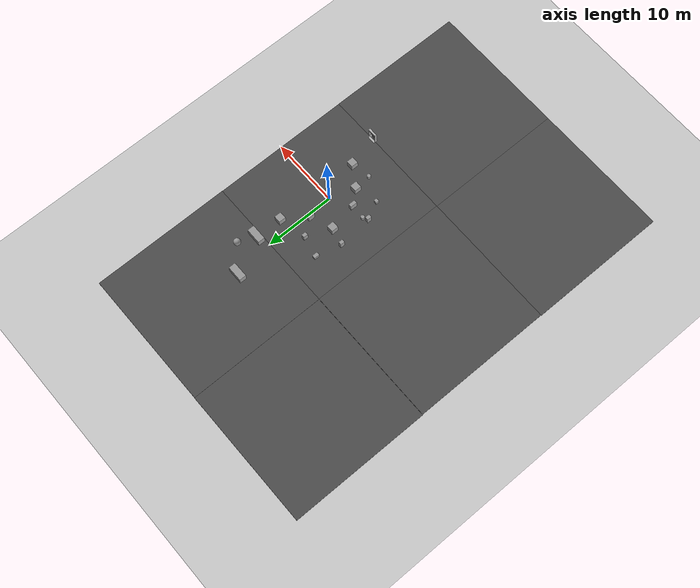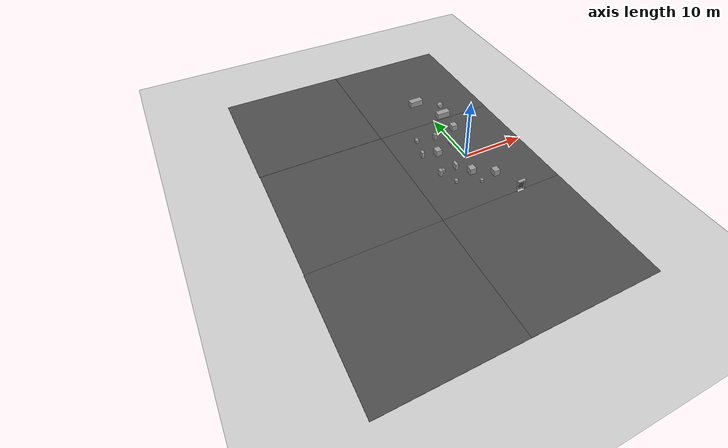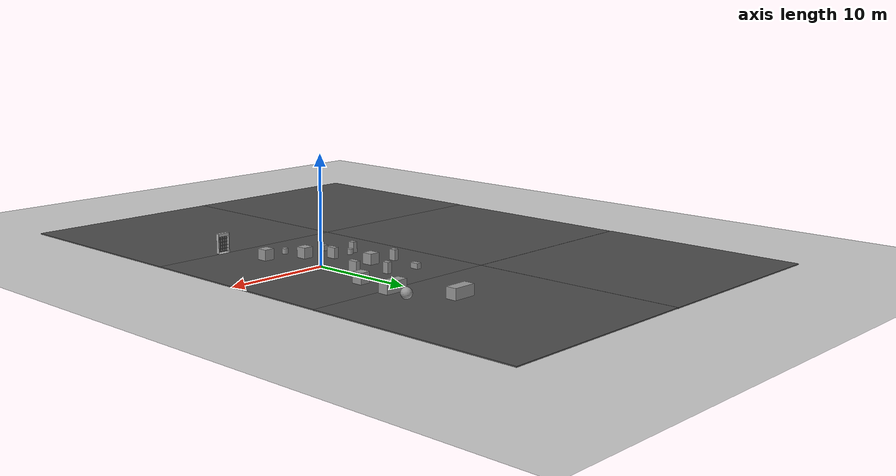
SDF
<sdf version="1.7">
 <world name="default">
  <model name="ground_plane">
   <static>1</static>
   <link name="link">
    <collision name="collision">
     <geometry><plane><normal>0 0 1</normal><size>100 100</size></plane></geometry>
     <surface>
      <contact><collide_bitmask>65535</collide_bitmask></contact>
      <friction><ode><mu>100</mu><mu2>50</mu2></ode></friction>
     </surface>
    </collision>
    <visual name="visual">
     <cast_shadows>0</cast_shadows>
     <geometry><plane><normal>0 0 1</normal><size>100 100</size></plane></geometry>
     <material>
      <script><uri>file://media/materials/scripts/gazebo.material</uri><name>Gazebo/Grey</name></script>
     </material>
    </visual>
   </link>
  </model>
  <model name="asphalt_plane">
   <static>1</static>
   <link name="link">
    <collision name="collision"><geometry><box><size>20 20 0.1</size></box></geometry></collision>
    <visual name="visual">
     <cast_shadows>0</cast_shadows>
     <geometry><box><size>20 20 0.1</size></box></geometry>
     <material>
      <script>
       <uri>model://asphalt_plane/materials/scripts</uri>
       <uri>model://asphalt_plane/materials/textures</uri>
       <name>vrc/asphalt</name>
      </script>
     </material>
    </visual>
   </link>
   <pose>-0.014859 -0.026662 0 0 -0 0</pose>
  </model>
  <model name="asphalt_plane_clone_1">
   <static>1</static>
   <link name="link">
    <collision name="collision"><geometry><box><size>20 20 0.1</size></box></geometry></collision>
    <visual name="visual">
     <cast_shadows>0</cast_shadows>
     <geometry><box><size>20 20 0.1</size></box></geometry>
     <material>
      <script>
       <uri>model://asphalt_plane/materials/scripts</uri>
       <uri>model://asphalt_plane/materials/textures</uri>
       <name>vrc/asphalt</name>
      </script>
     </material>
    </visual>
   </link>
   <pose>0 -20 0 0 -0 0</pose>
  </model>
  <model name="asphalt_plane_clone_2">
   <static>1</static>
   <link name="link">
    <collision name="collision"><geometry><box><size>20 20 0.1</size></box></geometry></collision>
    <visual name="visual">
     <cast_shadows>0</cast_shadows>
     <geometry><box><size>20 20 0.1</size></box></geometry>
     <material>
      <script>
       <uri>model://asphalt_plane/materials/scripts</uri>
       <uri>model://asphalt_plane/materials/textures</uri>
       <name>vrc/asphalt</name>
      </script>
     </material>
    </visual>
   </link>
   <pose>-20 -20 0 0 -0 0</pose>
  </model>
  <model name="asphalt_plane_clone_3">
   <static>1</static>
   <link name="link">
    <collision name="collision"><geometry><box><size>20 20 0.1</size></box></geometry></collision>
    <visual name="visual">
     <cast_shadows>0</cast_shadows>
     <geometry><box><size>20 20 0.1</size></box></geometry>
     <material>
      <script>
       <uri>model://asphalt_plane/materials/scripts</uri>
       <uri>model://asphalt_plane/materials/textures</uri>
       <name>vrc/asphalt</name>
      </script>
     </material>
    </visual>
   </link>
   <pose>-19.9436 -0.028987 0 0 -0 0</pose>
  </model>
  <model name="asphalt_plane_clone_4">
   <static>1</static>
   <link name="link">
    <collision name="collision"><geometry><box><size>20 20 0.1</size></box></geometry></collision>
    <visual name="visual">
     <cast_shadows>0</cast_shadows>
     <geometry><box><size>20 20 0.1</size></box></geometry>
     <material>
      <script>
       <uri>model://asphalt_plane/materials/scripts</uri>
       <uri>model://asphalt_plane/materials/textures</uri>
       <name>vrc/asphalt</name>
      </script>
     </material>
    </visual>
   </link>
   <pose>-20 20 0 0 -0 0</pose>
  </model>
  <model name="asphalt_plane_clone_5">
   <static>1</static>
   <link name="link">
    <collision name="collision"><geometry><box><size>20 20 0.1</size></box></geometry></collision>
    <visual name="visual">
     <cast_shadows>0</cast_shadows>
     <geometry><box><size>20 20 0.1</size></box></geometry>
     <material>
      <script>
       <uri>model://asphalt_plane/materials/scripts</uri>
       <uri>model://asphalt_plane/materials/textures</uri>
       <name>vrc/asphalt</name>
      </script>
     </material>
    </visual>
   </link>
   <pose>0.007354 19.9731 0 0 -0 0</pose>
  </model>
  <model name="unit_cylinder_clone_9">
   <pose>-1.0001 -5.99989 0.294835 0 -0 0.001023</pose>
   <link name="link">
    <inertial>
     <mass>1</mass>
     <inertia><ixx>0.145833</ixx><ixy>0</ixy><ixz>0</ixz><iyy>0.145833</iyy><iyz>0</iyz><izz>0.125</izz></inertia>
    </inertial>
    <collision name="collision">
     <geometry><cylinder><radius>0.264047</radius><length>0.48967</length></cylinder></geometry>
    </collision>
    <visual name="visual">
     <geometry><cylinder><radius>0.264047</radius><length>0.48967</length></cylinder></geometry>
     <material>
      <script><name>Gazebo/Grey</name><uri>file://media/materials/scripts/gazebo.material</uri></script>
     </material>
    </visual>
   </link>
  </model>
  <model name="unit_cylinder_clone_12">
   <pose>-4.99991 -1.52036 0.294837 5e-06 -7e-06 0.000647</pose>
   <link name="link">
    <inertial>
     <mass>1</mass>
     <inertia><ixx>0.145833</ixx><ixy>0</ixy><ixz>0</ixz><iyy>0.145833</iyy><iyz>0</iyz><izz>0.125</izz></inertia>
    </inertial>
    <collision name="collision">
     <geometry><cylinder><radius>0.264047</radius><length>0.48967</length></cylinder></geometry>
    </collision>
    <visual name="visual">
     <geometry><cylinder><radius>0.264047</radius><length>0.48967</length></cylinder></geometry>
     <material>
      <script><name>Gazebo/Grey</name><uri>file://media/materials/scripts/gazebo.material</uri></script>
     </material>
    </visual>
   </link>
  </model>
  <model name="unit_box_0_clone_1_clone_4">
   <pose>-4.41031 -4.36413 0.301356 0 -0 1e-06</pose>
   <link name="link">
    <inertial>
     <mass>1</mass>
     <inertia>
      <ixx>0.166667</ixx>
      <ixy>0</ixy>
      <ixz>0</ixz>
      <iyy>0.166667</iyy>
      <iyz>0</iyz>
      <izz>0.166667</izz>
     </inertia>
    </inertial>
    <collision name="collision">
     <geometry><box><size>0.495294 0.467832 0.502712</size></box></geometry>
    </collision>
    <visual name="visual">
     <geometry><box><size>0.495294 0.467832 0.502712</size></box></geometry>
     <material>
      <script><name>Gazebo/Grey</name><uri>file://media/materials/scripts/gazebo.material</uri></script>
     </material>
    </visual>
   </link>
  </model>
  <model name="unit_box_1">
   <pose>1.73473 -5.44843 0.549995 0 1e-05 -1e-06</pose>
   <link name="link">
    <inertial>
     <mass>1</mass>
     <inertia>
      <ixx>0.166667</ixx>
      <ixy>0</ixy>
      <ixz>0</ixz>
      <iyy>0.166667</iyy>
      <iyz>0</iyz>
      <izz>0.166667</izz>
     </inertia>
    </inertial>
    <collision name="collision"><geometry><box><size>1 1 1</size></box></geometry></collision>
    <visual name="visual">
     <geometry><box><size>1 1 1</size></box></geometry>
     <material>
      <script><name>Gazebo/Grey</name><uri>file://media/materials/scripts/gazebo.material</uri></script>
     </material>
    </visual>
   </link>
  </model>
  <model name="unit_box_2">
   <pose>-1.24056 -3.52809 0.549995 0 1e-05 -1e-06</pose>
   <link name="link">
    <inertial>
     <mass>1</mass>
     <inertia>
      <ixx>0.166667</ixx>
      <ixy>0</ixy>
      <ixz>0</ixz>
      <iyy>0.166667</iyy>
      <iyz>0</iyz>
      <izz>0.166667</izz>
     </inertia>
    </inertial>
    <collision name="collision"><geometry><box><size>1 1 1</size></box></geometry></collision>
    <visual name="visual">
     <geometry><box><size>1 1 1</size></box></geometry>
     <material>
      <script><name>Gazebo/Grey</name><uri>file://media/materials/scripts/gazebo.material</uri></script>
     </material>
    </visual>
   </link>
  </model>
  <model name="unit_box_3_clone">
   <pose>-2.24652 5.9397 0.55 0 -0 0</pose>
   <link name="link">
    <inertial>
     <mass>1</mass>
     <inertia>
      <ixx>0.166667</ixx>
      <ixy>0</ixy>
      <ixz>0</ixz>
      <iyy>0.166667</iyy>
      <iyz>0</iyz>
      <izz>0.166667</izz>
     </inertia>
    </inertial>
    <collision name="collision"><geometry><box><size>0.473217 0.637104 1</size></box></geometry></collision>
    <visual name="visual">
     <geometry><box><size>0.473217 0.637104 1</size></box></geometry>
     <material>
      <script><name>Gazebo/Grey</name><uri>file://media/materials/scripts/gazebo.material</uri></script>
     </material>
    </visual>
   </link>
  </model>
  <model name="unit_box_3_clone_0">
   <pose>-2.90923 -1.60892 0.55 0 -0 0</pose>
   <link name="link">
    <inertial>
     <mass>1</mass>
     <inertia>
      <ixx>0.166667</ixx>
      <ixy>0</ixy>
      <ixz>0</ixz>
      <iyy>0.166667</iyy>
      <iyz>0</iyz>
      <izz>0.166667</izz>
     </inertia>
    </inertial>
    <collision name="collision"><geometry><box><size>0.473217 0.950731 1</size></box></geometry></collision>
    <visual name="visual">
     <geometry><box><size>0.473217 0.950731 1</size></box></geometry>
     <material>
      <script><name>Gazebo/Grey</name><uri>file://media/materials/scripts/gazebo.material</uri></script>
     </material>
    </visual>
   </link>
  </model>
  <model name="unit_box_3_clone_2">
   <pose>-6.12917 2.98269 0.55 0 -0 0</pose>
   <link name="link">
    <inertial>
     <mass>1</mass>
     <inertia>
      <ixx>0.166667</ixx>
      <ixy>0</ixy>
      <ixz>0</ixz>
      <iyy>0.166667</iyy>
      <iyz>0</iyz>
      <izz>0.166667</izz>
     </inertia>
    </inertial>
    <collision name="collision"><geometry><box><size>0.473217 0.637104 1</size></box></geometry></collision>
    <visual name="visual">
     <geometry><box><size>0.473217 0.637104 1</size></box></geometry>
     <material>
      <script><name>Gazebo/Grey</name><uri>file://media/materials/scripts/gazebo.material</uri></script>
     </material>
    </visual>
   </link>
  </model>
  <model name="unit_box_5">
   <pose>1.91156 10.6508 0.549967 0 -2.9e-05 -0.009834</pose>
   <link name="link">
    <inertial>
     <mass>1</mass>
     <inertia>
      <ixx>0.166667</ixx>
      <ixy>0</ixy>
      <ixz>0</ixz>
      <iyy>0.166667</iyy>
      <iyz>0</iyz>
      <izz>0.166667</izz>
     </inertia>
    </inertial>
    <collision name="collision"><geometry><box><size>2.25366 1 1</size></box></geometry></collision>
    <visual name="visual">
     <geometry><box><size>2.25366 1 1</size></box></geometry>
     <material>
      <script><name>Gazebo/Grey</name><uri>file://media/materials/scripts/gazebo.material</uri></script>
     </material>
    </visual>
   </link>
  </model>
  <model name="unit_box_5_clone">
   <pose>-0.614729 15.7172 0.549967 0 2.9e-05 0</pose>
   <link name="link">
    <inertial>
     <mass>1</mass>
     <inertia>
      <ixx>0.166667</ixx>
      <ixy>0</ixy>
      <ixz>0</ixz>
      <iyy>0.166667</iyy>
      <iyz>0</iyz>
      <izz>0.166667</izz>
     </inertia>
    </inertial>
    <collision name="collision"><geometry><box><size>2.25366 1 1</size></box></geometry></collision>
    <visual name="visual">
     <geometry><box><size>2.25366 1 1</size></box></geometry>
     <material>
      <script><name>Gazebo/Grey</name><uri>file://media/materials/scripts/gazebo.material</uri></script>
     </material>
    </visual>
   </link>
  </model>
  <model name="unit_sphere_clone_0">
   <link name="link">
    <inertial>
     <mass>1.41372</mass>
     <inertia>
      <ixx>0.141372</ixx>
      <ixy>0</ixy>
      <ixz>0</ixz>
      <iyy>0.141372</iyy>
      <iyz>0</iyz>
      <izz>0.141372</izz>
     </inertia>
    </inertial>
    <visual name="visual">
     <geometry><sphere><radius>0.5</radius></sphere></geometry>
     <material>
      <script><name>Gazebo/Grey</name><uri>file://media/materials/scripts/gazebo.material</uri></script>
      <shader type="pixel"><normal_map>__default__</normal_map></shader>
     </material>
    </visual>
    <collision name="collision">
     <geometry><sphere><radius>0.5</radius></sphere></geometry>
     <surface>
      <friction>
       <ode><mu>1</mu><mu2>1</mu2><fdir1>0 0 0</fdir1><slip1>0</slip1><slip2>0</slip2></ode>
       <torsional>
        <coefficient>1</coefficient>
        <patch_radius>0</patch_radius>
        <surface_radius>0</surface_radius>
        <use_patch_radius>1</use_patch_radius>
        <ode><slip>0</slip></ode>
       </torsional>
      </friction>
      <bounce><restitution_coefficient>0</restitution_coefficient><threshold>1e+06</threshold></bounce>
      <contact>
       <collide_without_contact>0</collide_without_contact>
       <collide_without_contact_bitmask>1</collide_without_contact_bitmask>
       <collide_bitmask>1</collide_bitmask>
       <ode>
        <soft_cfm>0</soft_cfm>
        <soft_erp>0.2</soft_erp>
        <kp>1e+13</kp>
        <kd>1</kd>
        <max_vel>0.01</max_vel>
        <min_depth>0</min_depth>
       </ode>
       <bullet>
        <split_impulse>1</split_impulse>
        <split_impulse_penetration_threshold>-0.01</split_impulse_penetration_threshold>
        <soft_cfm>0</soft_cfm>
        <soft_erp>0.2</soft_erp>
        <kp>1e+13</kp>
        <kd>1</kd>
       </bullet>
      </contact>
     </surface>
    </collision>
   </link>
   <static>0</static>
   <pose>2.83927 13.0704 0.55 0 -0 0</pose>
  </model>
  <model name="frc2016_portcullis">
   <link name="base">
    <inertial>
     <mass>50</mass>
     <pose>0 0 1.02941 0 -0 0</pose>
     <inertia><ixx>3.81711</ixx><ixy>0</ixy><ixz>0</ixz><iyy>4.87698</iyy><iyz>0</iyz><izz>1.6283</izz></inertia>
    </inertial>
    <visual name="platform">
     <pose>0 0 0.07284 0 -0 0</pose>
     <geometry><box><size>1.27 0.5842 0.003175</size></box></geometry>
    </visual>
    <collision name="platform">
     <pose>0 0 0.07284 0 -0 0</pose>
     <geometry><box><size>1.27 0.5842 0.003175</size></box></geometry>
    </collision>
    <visual name="left_column">
     <pose>0.59284 0 0.99042 0 -0 0</pose>
     <geometry><box><size>0.08375 0.28575 1.83198</size></box></geometry>
    </visual>
    <collision name="left_column">
     <pose>0.59284 0 0.99042 0 -0 0</pose>
     <geometry><box><size>0.08375 0.28575 1.83198</size></box></geometry>
    </collision>
    <visual name="right_column">
     <pose>-0.57759 0 0.99042 0 -0 0</pose>
     <geometry><box><size>0.08375 0.28575 1.83198</size></box></geometry>
    </visual>
    <collision name="right_column">
     <pose>-0.57759 0 0.99042 0 -0 0</pose>
     <geometry><box><size>0.08375 0.28575 1.83198</size></box></geometry>
    </collision>
    <visual name="top">
     <pose>-0.00034 0 1.77722 0 -0 0</pose>
     <geometry><box><size>1.22962 0.28575 0.26657</size></box></geometry>
    </visual>
    <collision name="top">
     <pose>-0.00034 0 1.77722 0 -0 0</pose>
     <geometry><box><size>1.22962 0.28575 0.26657</size></box></geometry>
    </collision>
    <visual name="castor1">
     <pose>-0.45651 -0.16234 0.03272 0 -0 0</pose>
     <geometry><sphere><radius>0.03272</radius></sphere></geometry>
    </visual>
    <collision name="castor1">
     <pose>-0.45651 -0.16234 0.03272 0 -0 0</pose>
     <geometry><sphere><radius>0.03272</radius></sphere></geometry>
    </collision>
    <visual name="castor2">
     <pose>-0.27883 0.21836 0.03272 0 -0 0</pose>
     <geometry><sphere><radius>0.03272</radius></sphere></geometry>
    </visual>
    <collision name="castor2">
     <pose>-0.27883 0.21836 0.03272 0 -0 0</pose>
     <geometry><sphere><radius>0.03272</radius></sphere></geometry>
    </collision>
    <visual name="castor3">
     <pose>0.28083 0.21906 0.03272 0 -0 0</pose>
     <geometry><sphere><radius>0.03272</radius></sphere></geometry>
    </visual>
    <collision name="castor3">
     <pose>0.28083 0.21906 0.03272 0 -0 0</pose>
     <geometry><sphere><radius>0.03272</radius></sphere></geometry>
    </collision>
    <visual name="castor4">
     <pose>0.45871 -0.16186 0.03272 0 -0 0</pose>
     <geometry><sphere><radius>0.03272</radius></sphere></geometry>
    </visual>
    <collision name="castor4">
     <pose>0.45871 -0.16186 0.03272 0 -0 0</pose>
     <geometry><sphere><radius>0.03272</radius></sphere></geometry>
    </collision>
   </link>
   <link name="gate">
    <pose>-0.0287 0.02885 0.93327 0 -0 0</pose>
    <inertial>
     <mass>2</mass>
     <inertia><ixx>3.81711</ixx><ixy>0</ixy><ixz>0</ixz><iyy>4.87698</iyy><iyz>0</iyz><izz>1.6283</izz></inertia>
    </inertial>
    <collision name="collision"><geometry><box><size>1.1938 0.02496 1.45732</size></box></geometry></collision>
    <visual name="horz_1">
     <pose>0 0 -0.70326 0 -0 0</pose>
     <geometry><box><size>1.1938 0.02496 0.0508</size></box></geometry>
     <material><ambient>0.4 0.4 0.4 1</ambient><diffuse>0.4 0.4 0.4 1</diffuse></material>
    </visual>
    <visual name="horz_2">
     <pose>0 0 -0.44926 0 -0 0</pose>
     <geometry><box><size>1.1938 0.02496 0.0508</size></box></geometry>
     <material><ambient>0.4 0.4 0.4 1</ambient><diffuse>0.4 0.4 0.4 1</diffuse></material>
    </visual>
    <visual name="horz_3">
     <pose>0 0 -0.14517 0 -0 0</pose>
     <geometry><box><size>1.1938 0.02496 0.0508</size></box></geometry>
     <material><ambient>0.4 0.4 0.4 1</ambient><diffuse>0.4 0.4 0.4 1</diffuse></material>
    </visual>
    <visual name="horz_4">
     <pose>0 0 0.16034 0 -0 0</pose>
     <geometry><box><size>1.1938 0.02496 0.0508</size></box></geometry>
     <material><ambient>0.4 0.4 0.4 1</ambient><diffuse>0.4 0.4 0.4 1</diffuse></material>
    </visual>
    <visual name="horz_5">
     <pose>0 0 0.46514 0 -0 0</pose>
     <geometry><box><size>1.1938 0.02496 0.0508</size></box></geometry>
     <material><ambient>0.4 0.4 0.4 1</ambient><diffuse>0.4 0.4 0.4 1</diffuse></material>
    </visual>
    <visual name="horz_6">
     <pose>0 0 0.72994 0 -0 0</pose>
     <geometry><box><size>1.1938 0.02496 0.0508</size></box></geometry>
     <material><ambient>0.4 0.4 0.4 1</ambient><diffuse>0.4 0.4 0.4 1</diffuse></material>
    </visual>
    <visual name="vert_1">
     <pose>-0.58448 0 0 0 -0 0</pose>
     <geometry><box><size>0.02495 0.02496 1.45732</size></box></geometry>
     <material><ambient>0.4 0.4 0.4 1</ambient><diffuse>0.4 0.4 0.4 1</diffuse></material>
    </visual>
    <visual name="vert_2">
     <pose>-0.38128 0 0 0 -0 0</pose>
     <geometry><box><size>0.0508 0.02496 1.45732</size></box></geometry>
     <material><ambient>0.4 0.4 0.4 1</ambient><diffuse>0.4 0.4 0.4 1</diffuse></material>
    </visual>
    <visual name="vert_3">
     <pose>-0.12728 0 0 0 -0 0</pose>
     <geometry><box><size>0.0508 0.02496 1.45732</size></box></geometry>
     <material><ambient>0.4 0.4 0.4 1</ambient><diffuse>0.4 0.4 0.4 1</diffuse></material>
    </visual>
    <visual name="vert_4">
     <pose>0.12672 0 0 0 -0 0</pose>
     <geometry><box><size>0.0508 0.02496 1.45732</size></box></geometry>
     <material><ambient>0.4 0.4 0.4 1</ambient><diffuse>0.4 0.4 0.4 1</diffuse></material>
    </visual>
    <visual name="vert_5">
     <pose>0.38072 0 0 0 -0 0</pose>
     <geometry><box><size>0.0508 0.02496 1.45732</size></box></geometry>
     <material><ambient>0.4 0.4 0.4 1</ambient><diffuse>0.4 0.4 0.4 1</diffuse></material>
    </visual>
    <visual name="vert_6">
     <pose>0.58392 0 0 0 -0 0</pose>
     <geometry><box><size>0.02495 0.02496 1.45732</size></box></geometry>
     <material><ambient>0.4 0.4 0.4 1</ambient><diffuse>0.4 0.4 0.4 1</diffuse></material>
    </visual>
   </link>
   <joint name="joint" type="prismatic">
    <parent>base</parent>
    <child>gate</child>
    <axis>
     <xyz>0 0 1</xyz>
     <limit><lower>0</lower><upper>1</upper></limit>
     <dynamics><spring_reference>0</spring_reference><spring_stiffness>0</spring_stiffness></dynamics>
    </axis>
   </joint>
   <pose>2.98343 -10.0339 0.050001 -4e-06 -0 0.001154</pose>
  </model>
  <model name="unit_box_2_clone">
   <pose>-3.70652 2.47531 0.549995 9e-06 1e-06 -3e-06</pose>
   <link name="link">
    <inertial>
     <mass>1</mass>
     <inertia>
      <ixx>0.166667</ixx>
      <ixy>0</ixy>
      <ixz>0</ixz>
      <iyy>0.166667</iyy>
      <iyz>0</iyz>
      <izz>0.166667</izz>
     </inertia>
    </inertial>
    <collision name="collision"><geometry><box><size>1 1 1</size></box></geometry></collision>
    <visual name="visual">
     <geometry><box><size>1 1 1</size></box></geometry>
     <material>
      <script><name>Gazebo/Grey</name><uri>file://media/materials/scripts/gazebo.material</uri></script>
     </material>
    </visual>
   </link>
  </model>
  <model name="unit_box_0_clone_clone">
   <pose>-5.21709 6.55824 0.301357 0 -2e-06 6e-06</pose>
   <link name="link">
    <inertial>
     <mass>1</mass>
     <inertia>
      <ixx>0.166667</ixx>
      <ixy>0</ixy>
      <ixz>0</ixz>
      <iyy>0.166667</iyy>
      <iyz>0</iyz>
      <izz>0.166667</izz>
     </inertia>
    </inertial>
    <collision name="collision">
     <geometry><box><size>0.495294 0.766084 0.502712</size></box></geometry>
    </collision>
    <visual name="visual">
     <geometry><box><size>0.495294 0.766084 0.502712</size></box></geometry>
     <material>
      <script><name>Gazebo/Grey</name><uri>file://media/materials/scripts/gazebo.material</uri></script>
     </material>
    </visual>
   </link>
  </model>
  <model name="unit_box_3_clone_2_clone">
   <pose>-5.7079 -1.91053 0.55 0 -0 0</pose>
   <link name="link">
    <inertial>
     <mass>1</mass>
     <inertia>
      <ixx>0.166667</ixx>
      <ixy>0</ixy>
      <ixz>0</ixz>
      <iyy>0.166667</iyy>
      <iyz>0</iyz>
      <izz>0.166667</izz>
     </inertia>
    </inertial>
    <collision name="collision"><geometry><box><size>0.473217 0.637104 1</size></box></geometry></collision>
    <visual name="visual">
     <geometry><box><size>0.473217 0.637104 1</size></box></geometry>
     <material>
      <script><name>Gazebo/Grey</name><uri>file://media/materials/scripts/gazebo.material</uri></script>
     </material>
    </visual>
   </link>
  </model>
  <model name="unit_box_clone">
   <pose>1.75212 6.80359 0.549995 9e-06 1e-06 -1e-06</pose>
   <link name="link">
    <inertial>
     <mass>1</mass>
     <inertia>
      <ixx>0.166667</ixx>
      <ixy>0</ixy>
      <ixz>0</ixz>
      <iyy>0.166667</iyy>
      <iyz>0</iyz>
      <izz>0.166667</izz>
     </inertia>
    </inertial>
    <collision name="collision"><geometry><box><size>1 1 1</size></box></geometry></collision>
    <visual name="visual">
     <geometry><box><size>1 1 1</size></box></geometry>
     <material>
      <script><name>Gazebo/Grey</name><uri>file://media/materials/scripts/gazebo.material</uri></script>
     </material>
    </visual>
   </link>
  </model>
  <model name="unit_box_3_clone_0_clone_0">
   <pose>-0.579965 3.59107 0.55 0 -0 0</pose>
   <link name="link">
    <inertial>
     <mass>1</mass>
     <inertia>
      <ixx>0.166667</ixx>
      <ixy>0</ixy>
      <ixz>0</ixz>
      <iyy>0.166667</iyy>
      <iyz>0</iyz>
      <izz>0.166667</izz>
     </inertia>
    </inertial>
    <collision name="collision"><geometry><box><size>0.473217 0.950731 1</size></box></geometry></collision>
    <visual name="visual">
     <geometry><box><size>0.473217 0.950731 1</size></box></geometry>
     <material>
      <script><name>Gazebo/Grey</name><uri>file://media/materials/scripts/gazebo.material</uri></script>
     </material>
    </visual>
   </link>
  </model>
 </world>
</sdf>
